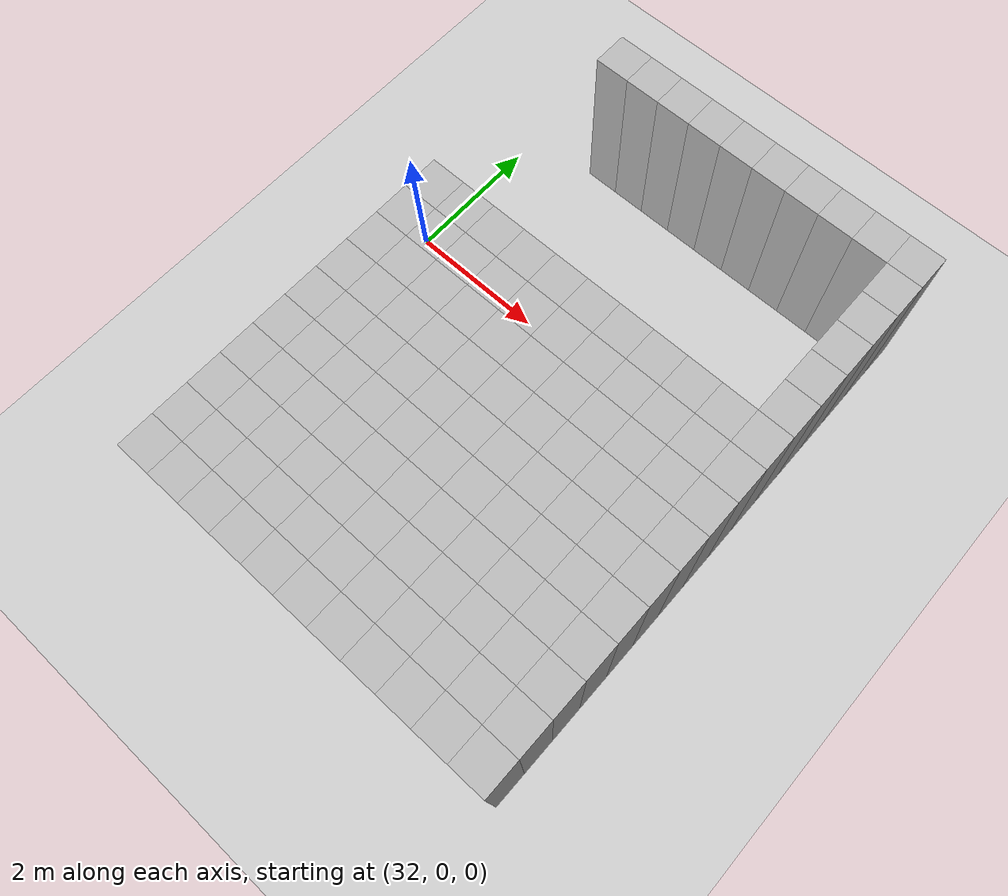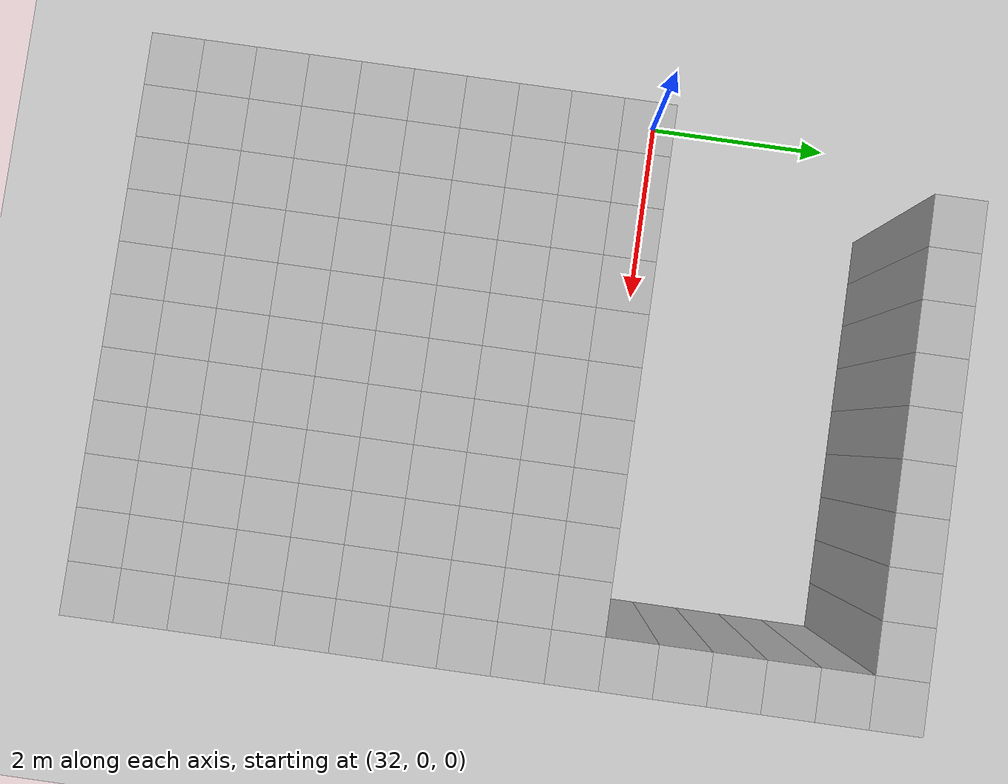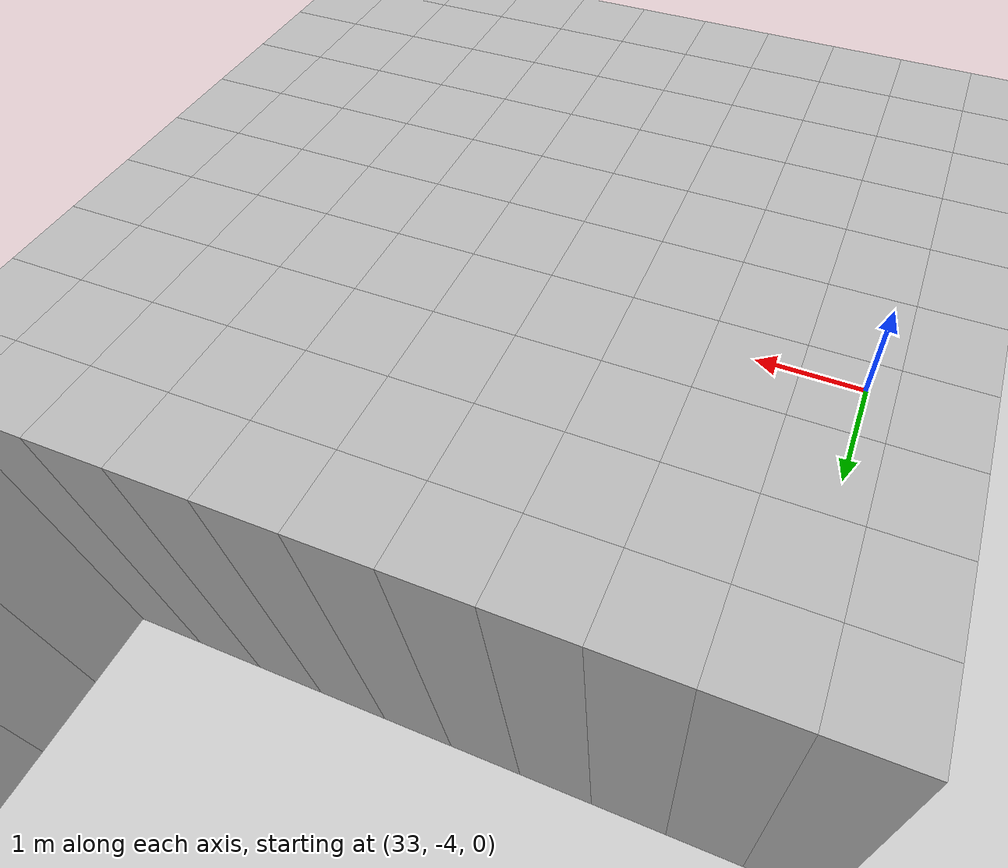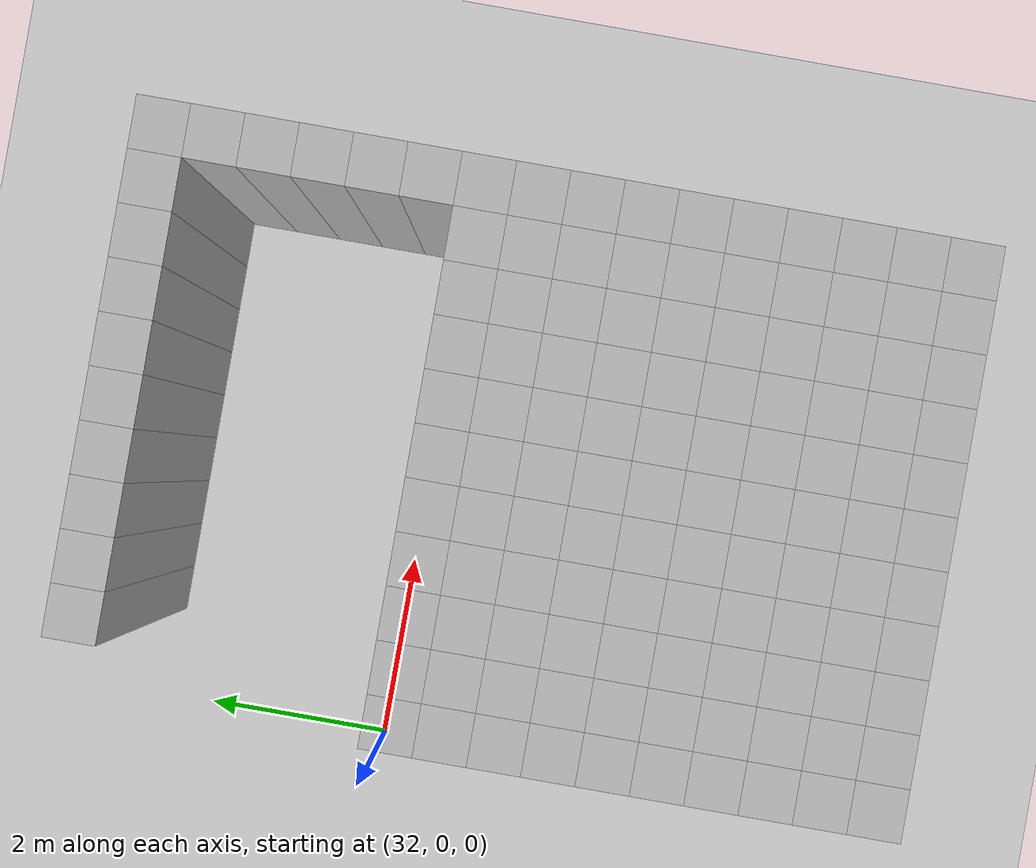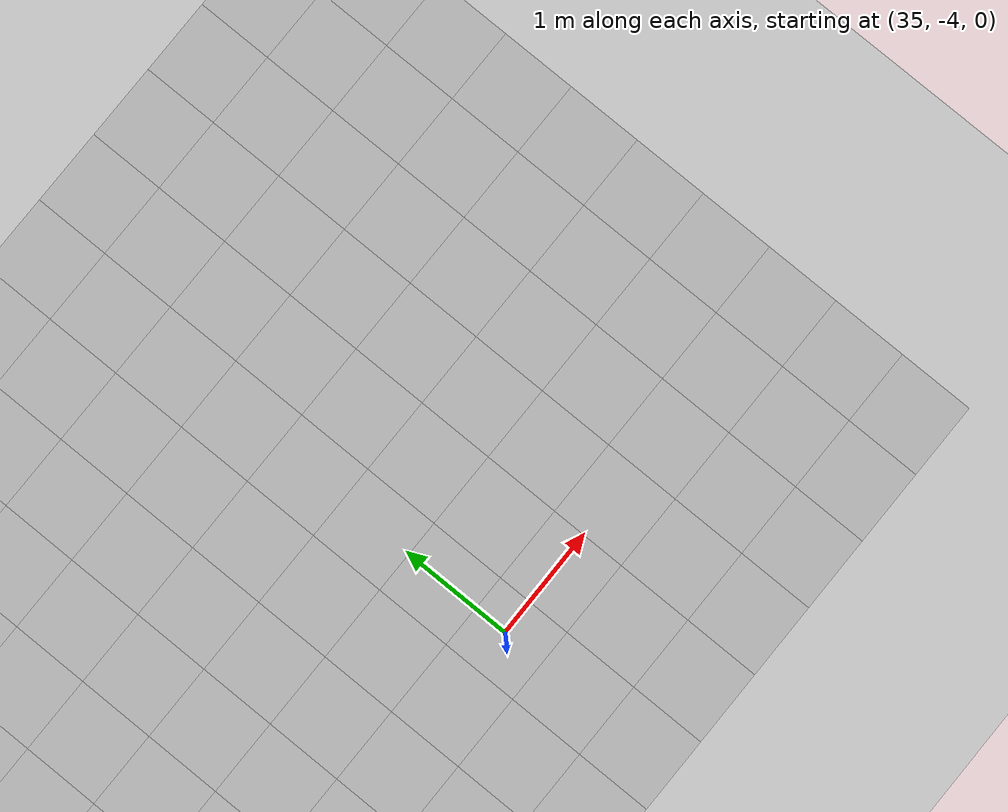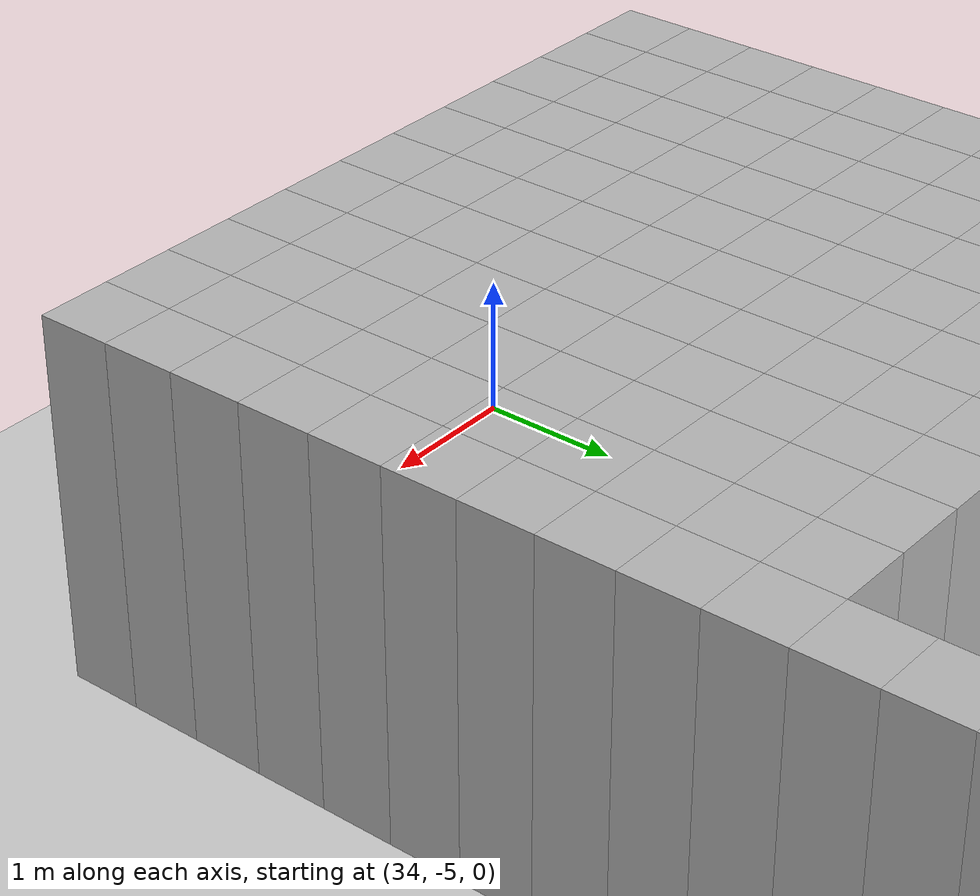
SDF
<sdf version="1.6">
 <world name="map_world">
  <include><uri>model://ground_plane</uri></include>
  <include><uri>model://sun</uri></include>
  <model name="wall_76">
   <static>true</static>
   <pose>33.250 2.750 1.250 0 0 0</pose>
   <link name="link">
    <collision name="collision"><geometry><box><size>0.500 0.500 2.500</size></box></geometry></collision>
    <visual name="visual"><geometry><box><size>0.500 0.500 2.500</size></box></geometry></visual>
   </link>
  </model>
  <model name="wall_77">
   <static>true</static>
   <pose>33.750 2.750 1.250 0 0 0</pose>
   <link name="link">
    <collision name="collision"><geometry><box><size>0.500 0.500 2.500</size></box></geometry></collision>
    <visual name="visual"><geometry><box><size>0.500 0.500 2.500</size></box></geometry></visual>
   </link>
  </model>
  <model name="wall_78">
   <static>true</static>
   <pose>34.250 2.750 1.250 0 0 0</pose>
   <link name="link">
    <collision name="collision"><geometry><box><size>0.500 0.500 2.500</size></box></geometry></collision>
    <visual name="visual"><geometry><box><size>0.500 0.500 2.500</size></box></geometry></visual>
   </link>
  </model>
  <model name="wall_79">
   <static>true</static>
   <pose>34.750 2.750 1.250 0 0 0</pose>
   <link name="link">
    <collision name="collision"><geometry><box><size>0.500 0.500 2.500</size></box></geometry></collision>
    <visual name="visual"><geometry><box><size>0.500 0.500 2.500</size></box></geometry></visual>
   </link>
  </model>
  <model name="wall_80">
   <static>true</static>
   <pose>35.250 2.750 1.250 0 0 0</pose>
   <link name="link">
    <collision name="collision"><geometry><box><size>0.500 0.500 2.500</size></box></geometry></collision>
    <visual name="visual"><geometry><box><size>0.500 0.500 2.500</size></box></geometry></visual>
   </link>
  </model>
  <model name="wall_81">
   <static>true</static>
   <pose>35.750 2.750 1.250 0 0 0</pose>
   <link name="link">
    <collision name="collision"><geometry><box><size>0.500 0.500 2.500</size></box></geometry></collision>
    <visual name="visual"><geometry><box><size>0.500 0.500 2.500</size></box></geometry></visual>
   </link>
  </model>
  <model name="wall_82">
   <static>true</static>
   <pose>36.250 2.750 1.250 0 0 0</pose>
   <link name="link">
    <collision name="collision"><geometry><box><size>0.500 0.500 2.500</size></box></geometry></collision>
    <visual name="visual"><geometry><box><size>0.500 0.500 2.500</size></box></geometry></visual>
   </link>
  </model>
  <model name="wall_83">
   <static>true</static>
   <pose>36.750 2.750 1.250 0 0 0</pose>
   <link name="link">
    <collision name="collision"><geometry><box><size>0.500 0.500 2.500</size></box></geometry></collision>
    <visual name="visual"><geometry><box><size>0.500 0.500 2.500</size></box></geometry></visual>
   </link>
  </model>
  <model name="wall_84">
   <static>true</static>
   <pose>37.250 2.750 1.250 0 0 0</pose>
   <link name="link">
    <collision name="collision"><geometry><box><size>0.500 0.500 2.500</size></box></geometry></collision>
    <visual name="visual"><geometry><box><size>0.500 0.500 2.500</size></box></geometry></visual>
   </link>
  </model>
  <model name="wall_85">
   <static>true</static>
   <pose>37.750 2.750 1.250 0 0 0</pose>
   <link name="link">
    <collision name="collision"><geometry><box><size>0.500 0.500 2.500</size></box></geometry></collision>
    <visual name="visual"><geometry><box><size>0.500 0.500 2.500</size></box></geometry></visual>
   </link>
  </model>
  <model name="wall_117">
   <static>true</static>
   <pose>37.750 2.250 1.250 0 0 0</pose>
   <link name="link">
    <collision name="collision"><geometry><box><size>0.500 0.500 2.500</size></box></geometry></collision>
    <visual name="visual"><geometry><box><size>0.500 0.500 2.500</size></box></geometry></visual>
   </link>
  </model>
  <model name="wall_119">
   <static>true</static>
   <pose>37.750 1.750 1.250 0 0 0</pose>
   <link name="link">
    <collision name="collision"><geometry><box><size>0.500 0.500 2.500</size></box></geometry></collision>
    <visual name="visual"><geometry><box><size>0.500 0.500 2.500</size></box></geometry></visual>
   </link>
  </model>
  <model name="wall_121">
   <static>true</static>
   <pose>37.750 1.250 1.250 0 0 0</pose>
   <link name="link">
    <collision name="collision"><geometry><box><size>0.500 0.500 2.500</size></box></geometry></collision>
    <visual name="visual"><geometry><box><size>0.500 0.500 2.500</size></box></geometry></visual>
   </link>
  </model>
  <model name="wall_123">
   <static>true</static>
   <pose>37.750 0.750 1.250 0 0 0</pose>
   <link name="link">
    <collision name="collision"><geometry><box><size>0.500 0.500 2.500</size></box></geometry></collision>
    <visual name="visual"><geometry><box><size>0.500 0.500 2.500</size></box></geometry></visual>
   </link>
  </model>
  <model name="wall_143">
   <static>true</static>
   <pose>37.750 0.250 1.250 0 0 0</pose>
   <link name="link">
    <collision name="collision"><geometry><box><size>0.500 0.500 2.500</size></box></geometry></collision>
    <visual name="visual"><geometry><box><size>0.500 0.500 2.500</size></box></geometry></visual>
   </link>
  </model>
  <model name="wall_205">
   <static>true</static>
   <pose>32.750 -0.250 1.250 0 0 0</pose>
   <link name="link">
    <collision name="collision"><geometry><box><size>0.500 0.500 2.500</size></box></geometry></collision>
    <visual name="visual"><geometry><box><size>0.500 0.500 2.500</size></box></geometry></visual>
   </link>
  </model>
  <model name="wall_206">
   <static>true</static>
   <pose>33.250 -0.250 1.250 0 0 0</pose>
   <link name="link">
    <collision name="collision"><geometry><box><size>0.500 0.500 2.500</size></box></geometry></collision>
    <visual name="visual"><geometry><box><size>0.500 0.500 2.500</size></box></geometry></visual>
   </link>
  </model>
  <model name="wall_207">
   <static>true</static>
   <pose>33.750 -0.250 1.250 0 0 0</pose>
   <link name="link">
    <collision name="collision"><geometry><box><size>0.500 0.500 2.500</size></box></geometry></collision>
    <visual name="visual"><geometry><box><size>0.500 0.500 2.500</size></box></geometry></visual>
   </link>
  </model>
  <model name="wall_208">
   <static>true</static>
   <pose>34.250 -0.250 1.250 0 0 0</pose>
   <link name="link">
    <collision name="collision"><geometry><box><size>0.500 0.500 2.500</size></box></geometry></collision>
    <visual name="visual"><geometry><box><size>0.500 0.500 2.500</size></box></geometry></visual>
   </link>
  </model>
  <model name="wall_209">
   <static>true</static>
   <pose>34.750 -0.250 1.250 0 0 0</pose>
   <link name="link">
    <collision name="collision"><geometry><box><size>0.500 0.500 2.500</size></box></geometry></collision>
    <visual name="visual"><geometry><box><size>0.500 0.500 2.500</size></box></geometry></visual>
   </link>
  </model>
  <model name="wall_210">
   <static>true</static>
   <pose>35.250 -0.250 1.250 0 0 0</pose>
   <link name="link">
    <collision name="collision"><geometry><box><size>0.500 0.500 2.500</size></box></geometry></collision>
    <visual name="visual"><geometry><box><size>0.500 0.500 2.500</size></box></geometry></visual>
   </link>
  </model>
  <model name="wall_211">
   <static>true</static>
   <pose>35.750 -0.250 1.250 0 0 0</pose>
   <link name="link">
    <collision name="collision"><geometry><box><size>0.500 0.500 2.500</size></box></geometry></collision>
    <visual name="visual"><geometry><box><size>0.500 0.500 2.500</size></box></geometry></visual>
   </link>
  </model>
  <model name="wall_212">
   <static>true</static>
   <pose>36.250 -0.250 1.250 0 0 0</pose>
   <link name="link">
    <collision name="collision"><geometry><box><size>0.500 0.500 2.500</size></box></geometry></collision>
    <visual name="visual"><geometry><box><size>0.500 0.500 2.500</size></box></geometry></visual>
   </link>
  </model>
  <model name="wall_213">
   <static>true</static>
   <pose>36.750 -0.250 1.250 0 0 0</pose>
   <link name="link">
    <collision name="collision"><geometry><box><size>0.500 0.500 2.500</size></box></geometry></collision>
    <visual name="visual"><geometry><box><size>0.500 0.500 2.500</size></box></geometry></visual>
   </link>
  </model>
  <model name="wall_214">
   <static>true</static>
   <pose>37.250 -0.250 1.250 0 0 0</pose>
   <link name="link">
    <collision name="collision"><geometry><box><size>0.500 0.500 2.500</size></box></geometry></collision>
    <visual name="visual"><geometry><box><size>0.500 0.500 2.500</size></box></geometry></visual>
   </link>
  </model>
  <model name="wall_215">
   <static>true</static>
   <pose>37.750 -0.250 1.250 0 0 0</pose>
   <link name="link">
    <collision name="collision"><geometry><box><size>0.500 0.500 2.500</size></box></geometry></collision>
    <visual name="visual"><geometry><box><size>0.500 0.500 2.500</size></box></geometry></visual>
   </link>
  </model>
  <model name="wall_277">
   <static>true</static>
   <pose>32.750 -0.750 1.250 0 0 0</pose>
   <link name="link">
    <collision name="collision"><geometry><box><size>0.500 0.500 2.500</size></box></geometry></collision>
    <visual name="visual"><geometry><box><size>0.500 0.500 2.500</size></box></geometry></visual>
   </link>
  </model>
  <model name="wall_278">
   <static>true</static>
   <pose>33.250 -0.750 1.250 0 0 0</pose>
   <link name="link">
    <collision name="collision"><geometry><box><size>0.500 0.500 2.500</size></box></geometry></collision>
    <visual name="visual"><geometry><box><size>0.500 0.500 2.500</size></box></geometry></visual>
   </link>
  </model>
  <model name="wall_279">
   <static>true</static>
   <pose>33.750 -0.750 1.250 0 0 0</pose>
   <link name="link">
    <collision name="collision"><geometry><box><size>0.500 0.500 2.500</size></box></geometry></collision>
    <visual name="visual"><geometry><box><size>0.500 0.500 2.500</size></box></geometry></visual>
   </link>
  </model>
  <model name="wall_280">
   <static>true</static>
   <pose>34.250 -0.750 1.250 0 0 0</pose>
   <link name="link">
    <collision name="collision"><geometry><box><size>0.500 0.500 2.500</size></box></geometry></collision>
    <visual name="visual"><geometry><box><size>0.500 0.500 2.500</size></box></geometry></visual>
   </link>
  </model>
  <model name="wall_281">
   <static>true</static>
   <pose>34.750 -0.750 1.250 0 0 0</pose>
   <link name="link">
    <collision name="collision"><geometry><box><size>0.500 0.500 2.500</size></box></geometry></collision>
    <visual name="visual"><geometry><box><size>0.500 0.500 2.500</size></box></geometry></visual>
   </link>
  </model>
  <model name="wall_282">
   <static>true</static>
   <pose>35.250 -0.750 1.250 0 0 0</pose>
   <link name="link">
    <collision name="collision"><geometry><box><size>0.500 0.500 2.500</size></box></geometry></collision>
    <visual name="visual"><geometry><box><size>0.500 0.500 2.500</size></box></geometry></visual>
   </link>
  </model>
  <model name="wall_283">
   <static>true</static>
   <pose>35.750 -0.750 1.250 0 0 0</pose>
   <link name="link">
    <collision name="collision"><geometry><box><size>0.500 0.500 2.500</size></box></geometry></collision>
    <visual name="visual"><geometry><box><size>0.500 0.500 2.500</size></box></geometry></visual>
   </link>
  </model>
  <model name="wall_284">
   <static>true</static>
   <pose>36.250 -0.750 1.250 0 0 0</pose>
   <link name="link">
    <collision name="collision"><geometry><box><size>0.500 0.500 2.500</size></box></geometry></collision>
    <visual name="visual"><geometry><box><size>0.500 0.500 2.500</size></box></geometry></visual>
   </link>
  </model>
  <model name="wall_285">
   <static>true</static>
   <pose>36.750 -0.750 1.250 0 0 0</pose>
   <link name="link">
    <collision name="collision"><geometry><box><size>0.500 0.500 2.500</size></box></geometry></collision>
    <visual name="visual"><geometry><box><size>0.500 0.500 2.500</size></box></geometry></visual>
   </link>
  </model>
  <model name="wall_286">
   <static>true</static>
   <pose>37.250 -0.750 1.250 0 0 0</pose>
   <link name="link">
    <collision name="collision"><geometry><box><size>0.500 0.500 2.500</size></box></geometry></collision>
    <visual name="visual"><geometry><box><size>0.500 0.500 2.500</size></box></geometry></visual>
   </link>
  </model>
  <model name="wall_287">
   <static>true</static>
   <pose>37.750 -0.750 1.250 0 0 0</pose>
   <link name="link">
    <collision name="collision"><geometry><box><size>0.500 0.500 2.500</size></box></geometry></collision>
    <visual name="visual"><geometry><box><size>0.500 0.500 2.500</size></box></geometry></visual>
   </link>
  </model>
  <model name="wall_349">
   <static>true</static>
   <pose>32.750 -1.250 1.250 0 0 0</pose>
   <link name="link">
    <collision name="collision"><geometry><box><size>0.500 0.500 2.500</size></box></geometry></collision>
    <visual name="visual"><geometry><box><size>0.500 0.500 2.500</size></box></geometry></visual>
   </link>
  </model>
  <model name="wall_350">
   <static>true</static>
   <pose>33.250 -1.250 1.250 0 0 0</pose>
   <link name="link">
    <collision name="collision"><geometry><box><size>0.500 0.500 2.500</size></box></geometry></collision>
    <visual name="visual"><geometry><box><size>0.500 0.500 2.500</size></box></geometry></visual>
   </link>
  </model>
  <model name="wall_351">
   <static>true</static>
   <pose>33.750 -1.250 1.250 0 0 0</pose>
   <link name="link">
    <collision name="collision"><geometry><box><size>0.500 0.500 2.500</size></box></geometry></collision>
    <visual name="visual"><geometry><box><size>0.500 0.500 2.500</size></box></geometry></visual>
   </link>
  </model>
  <model name="wall_352">
   <static>true</static>
   <pose>34.250 -1.250 1.250 0 0 0</pose>
   <link name="link">
    <collision name="collision"><geometry><box><size>0.500 0.500 2.500</size></box></geometry></collision>
    <visual name="visual"><geometry><box><size>0.500 0.500 2.500</size></box></geometry></visual>
   </link>
  </model>
  <model name="wall_353">
   <static>true</static>
   <pose>34.750 -1.250 1.250 0 0 0</pose>
   <link name="link">
    <collision name="collision"><geometry><box><size>0.500 0.500 2.500</size></box></geometry></collision>
    <visual name="visual"><geometry><box><size>0.500 0.500 2.500</size></box></geometry></visual>
   </link>
  </model>
  <model name="wall_354">
   <static>true</static>
   <pose>35.250 -1.250 1.250 0 0 0</pose>
   <link name="link">
    <collision name="collision"><geometry><box><size>0.500 0.500 2.500</size></box></geometry></collision>
    <visual name="visual"><geometry><box><size>0.500 0.500 2.500</size></box></geometry></visual>
   </link>
  </model>
  <model name="wall_355">
   <static>true</static>
   <pose>35.750 -1.250 1.250 0 0 0</pose>
   <link name="link">
    <collision name="collision"><geometry><box><size>0.500 0.500 2.500</size></box></geometry></collision>
    <visual name="visual"><geometry><box><size>0.500 0.500 2.500</size></box></geometry></visual>
   </link>
  </model>
  <model name="wall_356">
   <static>true</static>
   <pose>36.250 -1.250 1.250 0 0 0</pose>
   <link name="link">
    <collision name="collision"><geometry><box><size>0.500 0.500 2.500</size></box></geometry></collision>
    <visual name="visual"><geometry><box><size>0.500 0.500 2.500</size></box></geometry></visual>
   </link>
  </model>
  <model name="wall_357">
   <static>true</static>
   <pose>36.750 -1.250 1.250 0 0 0</pose>
   <link name="link">
    <collision name="collision"><geometry><box><size>0.500 0.500 2.500</size></box></geometry></collision>
    <visual name="visual"><geometry><box><size>0.500 0.500 2.500</size></box></geometry></visual>
   </link>
  </model>
  <model name="wall_358">
   <static>true</static>
   <pose>37.250 -1.250 1.250 0 0 0</pose>
   <link name="link">
    <collision name="collision"><geometry><box><size>0.500 0.500 2.500</size></box></geometry></collision>
    <visual name="visual"><geometry><box><size>0.500 0.500 2.500</size></box></geometry></visual>
   </link>
  </model>
  <model name="wall_359">
   <static>true</static>
   <pose>37.750 -1.250 1.250 0 0 0</pose>
   <link name="link">
    <collision name="collision"><geometry><box><size>0.500 0.500 2.500</size></box></geometry></collision>
    <visual name="visual"><geometry><box><size>0.500 0.500 2.500</size></box></geometry></visual>
   </link>
  </model>
  <model name="wall_421">
   <static>true</static>
   <pose>32.750 -1.750 1.250 0 0 0</pose>
   <link name="link">
    <collision name="collision"><geometry><box><size>0.500 0.500 2.500</size></box></geometry></collision>
    <visual name="visual"><geometry><box><size>0.500 0.500 2.500</size></box></geometry></visual>
   </link>
  </model>
  <model name="wall_422">
   <static>true</static>
   <pose>33.250 -1.750 1.250 0 0 0</pose>
   <link name="link">
    <collision name="collision"><geometry><box><size>0.500 0.500 2.500</size></box></geometry></collision>
    <visual name="visual"><geometry><box><size>0.500 0.500 2.500</size></box></geometry></visual>
   </link>
  </model>
  <model name="wall_423">
   <static>true</static>
   <pose>33.750 -1.750 1.250 0 0 0</pose>
   <link name="link">
    <collision name="collision"><geometry><box><size>0.500 0.500 2.500</size></box></geometry></collision>
    <visual name="visual"><geometry><box><size>0.500 0.500 2.500</size></box></geometry></visual>
   </link>
  </model>
  <model name="wall_424">
   <static>true</static>
   <pose>34.250 -1.750 1.250 0 0 0</pose>
   <link name="link">
    <collision name="collision"><geometry><box><size>0.500 0.500 2.500</size></box></geometry></collision>
    <visual name="visual"><geometry><box><size>0.500 0.500 2.500</size></box></geometry></visual>
   </link>
  </model>
  <model name="wall_425">
   <static>true</static>
   <pose>34.750 -1.750 1.250 0 0 0</pose>
   <link name="link">
    <collision name="collision"><geometry><box><size>0.500 0.500 2.500</size></box></geometry></collision>
    <visual name="visual"><geometry><box><size>0.500 0.500 2.500</size></box></geometry></visual>
   </link>
  </model>
  <model name="wall_426">
   <static>true</static>
   <pose>35.250 -1.750 1.250 0 0 0</pose>
   <link name="link">
    <collision name="collision"><geometry><box><size>0.500 0.500 2.500</size></box></geometry></collision>
    <visual name="visual"><geometry><box><size>0.500 0.500 2.500</size></box></geometry></visual>
   </link>
  </model>
  <model name="wall_427">
   <static>true</static>
   <pose>35.750 -1.750 1.250 0 0 0</pose>
   <link name="link">
    <collision name="collision"><geometry><box><size>0.500 0.500 2.500</size></box></geometry></collision>
    <visual name="visual"><geometry><box><size>0.500 0.500 2.500</size></box></geometry></visual>
   </link>
  </model>
  <model name="wall_428">
   <static>true</static>
   <pose>36.250 -1.750 1.250 0 0 0</pose>
   <link name="link">
    <collision name="collision"><geometry><box><size>0.500 0.500 2.500</size></box></geometry></collision>
    <visual name="visual"><geometry><box><size>0.500 0.500 2.500</size></box></geometry></visual>
   </link>
  </model>
  <model name="wall_429">
   <static>true</static>
   <pose>36.750 -1.750 1.250 0 0 0</pose>
   <link name="link">
    <collision name="collision"><geometry><box><size>0.500 0.500 2.500</size></box></geometry></collision>
    <visual name="visual"><geometry><box><size>0.500 0.500 2.500</size></box></geometry></visual>
   </link>
  </model>
  <model name="wall_430">
   <static>true</static>
   <pose>37.250 -1.750 1.250 0 0 0</pose>
   <link name="link">
    <collision name="collision"><geometry><box><size>0.500 0.500 2.500</size></box></geometry></collision>
    <visual name="visual"><geometry><box><size>0.500 0.500 2.500</size></box></geometry></visual>
   </link>
  </model>
  <model name="wall_431">
   <static>true</static>
   <pose>37.750 -1.750 1.250 0 0 0</pose>
   <link name="link">
    <collision name="collision"><geometry><box><size>0.500 0.500 2.500</size></box></geometry></collision>
    <visual name="visual"><geometry><box><size>0.500 0.500 2.500</size></box></geometry></visual>
   </link>
  </model>
  <model name="wall_493">
   <static>true</static>
   <pose>32.750 -2.250 1.250 0 0 0</pose>
   <link name="link">
    <collision name="collision"><geometry><box><size>0.500 0.500 2.500</size></box></geometry></collision>
    <visual name="visual"><geometry><box><size>0.500 0.500 2.500</size></box></geometry></visual>
   </link>
  </model>
  <model name="wall_494">
   <static>true</static>
   <pose>33.250 -2.250 1.250 0 0 0</pose>
   <link name="link">
    <collision name="collision"><geometry><box><size>0.500 0.500 2.500</size></box></geometry></collision>
    <visual name="visual"><geometry><box><size>0.500 0.500 2.500</size></box></geometry></visual>
   </link>
  </model>
  <model name="wall_495">
   <static>true</static>
   <pose>33.750 -2.250 1.250 0 0 0</pose>
   <link name="link">
    <collision name="collision"><geometry><box><size>0.500 0.500 2.500</size></box></geometry></collision>
    <visual name="visual"><geometry><box><size>0.500 0.500 2.500</size></box></geometry></visual>
   </link>
  </model>
  <model name="wall_496">
   <static>true</static>
   <pose>34.250 -2.250 1.250 0 0 0</pose>
   <link name="link">
    <collision name="collision"><geometry><box><size>0.500 0.500 2.500</size></box></geometry></collision>
    <visual name="visual"><geometry><box><size>0.500 0.500 2.500</size></box></geometry></visual>
   </link>
  </model>
  <model name="wall_497">
   <static>true</static>
   <pose>34.750 -2.250 1.250 0 0 0</pose>
   <link name="link">
    <collision name="collision"><geometry><box><size>0.500 0.500 2.500</size></box></geometry></collision>
    <visual name="visual"><geometry><box><size>0.500 0.500 2.500</size></box></geometry></visual>
   </link>
  </model>
  <model name="wall_498">
   <static>true</static>
   <pose>35.250 -2.250 1.250 0 0 0</pose>
   <link name="link">
    <collision name="collision"><geometry><box><size>0.500 0.500 2.500</size></box></geometry></collision>
    <visual name="visual"><geometry><box><size>0.500 0.500 2.500</size></box></geometry></visual>
   </link>
  </model>
  <model name="wall_499">
   <static>true</static>
   <pose>35.750 -2.250 1.250 0 0 0</pose>
   <link name="link">
    <collision name="collision"><geometry><box><size>0.500 0.500 2.500</size></box></geometry></collision>
    <visual name="visual"><geometry><box><size>0.500 0.500 2.500</size></box></geometry></visual>
   </link>
  </model>
  <model name="wall_500">
   <static>true</static>
   <pose>36.250 -2.250 1.250 0 0 0</pose>
   <link name="link">
    <collision name="collision"><geometry><box><size>0.500 0.500 2.500</size></box></geometry></collision>
    <visual name="visual"><geometry><box><size>0.500 0.500 2.500</size></box></geometry></visual>
   </link>
  </model>
  <model name="wall_501">
   <static>true</static>
   <pose>36.750 -2.250 1.250 0 0 0</pose>
   <link name="link">
    <collision name="collision"><geometry><box><size>0.500 0.500 2.500</size></box></geometry></collision>
    <visual name="visual"><geometry><box><size>0.500 0.500 2.500</size></box></geometry></visual>
   </link>
  </model>
  <model name="wall_502">
   <static>true</static>
   <pose>37.250 -2.250 1.250 0 0 0</pose>
   <link name="link">
    <collision name="collision"><geometry><box><size>0.500 0.500 2.500</size></box></geometry></collision>
    <visual name="visual"><geometry><box><size>0.500 0.500 2.500</size></box></geometry></visual>
   </link>
  </model>
  <model name="wall_503">
   <static>true</static>
   <pose>37.750 -2.250 1.250 0 0 0</pose>
   <link name="link">
    <collision name="collision"><geometry><box><size>0.500 0.500 2.500</size></box></geometry></collision>
    <visual name="visual"><geometry><box><size>0.500 0.500 2.500</size></box></geometry></visual>
   </link>
  </model>
  <model name="wall_565">
   <static>true</static>
   <pose>32.750 -2.750 1.250 0 0 0</pose>
   <link name="link">
    <collision name="collision"><geometry><box><size>0.500 0.500 2.500</size></box></geometry></collision>
    <visual name="visual"><geometry><box><size>0.500 0.500 2.500</size></box></geometry></visual>
   </link>
  </model>
  <model name="wall_566">
   <static>true</static>
   <pose>33.250 -2.750 1.250 0 0 0</pose>
   <link name="link">
    <collision name="collision"><geometry><box><size>0.500 0.500 2.500</size></box></geometry></collision>
    <visual name="visual"><geometry><box><size>0.500 0.500 2.500</size></box></geometry></visual>
   </link>
  </model>
  <model name="wall_567">
   <static>true</static>
   <pose>33.750 -2.750 1.250 0 0 0</pose>
   <link name="link">
    <collision name="collision"><geometry><box><size>0.500 0.500 2.500</size></box></geometry></collision>
    <visual name="visual"><geometry><box><size>0.500 0.500 2.500</size></box></geometry></visual>
   </link>
  </model>
  <model name="wall_568">
   <static>true</static>
   <pose>34.250 -2.750 1.250 0 0 0</pose>
   <link name="link">
    <collision name="collision"><geometry><box><size>0.500 0.500 2.500</size></box></geometry></collision>
    <visual name="visual"><geometry><box><size>0.500 0.500 2.500</size></box></geometry></visual>
   </link>
  </model>
  <model name="wall_569">
   <static>true</static>
   <pose>34.750 -2.750 1.250 0 0 0</pose>
   <link name="link">
    <collision name="collision"><geometry><box><size>0.500 0.500 2.500</size></box></geometry></collision>
    <visual name="visual"><geometry><box><size>0.500 0.500 2.500</size></box></geometry></visual>
   </link>
  </model>
  <model name="wall_570">
   <static>true</static>
   <pose>35.250 -2.750 1.250 0 0 0</pose>
   <link name="link">
    <collision name="collision"><geometry><box><size>0.500 0.500 2.500</size></box></geometry></collision>
    <visual name="visual"><geometry><box><size>0.500 0.500 2.500</size></box></geometry></visual>
   </link>
  </model>
  <model name="wall_571">
   <static>true</static>
   <pose>35.750 -2.750 1.250 0 0 0</pose>
   <link name="link">
    <collision name="collision"><geometry><box><size>0.500 0.500 2.500</size></box></geometry></collision>
    <visual name="visual"><geometry><box><size>0.500 0.500 2.500</size></box></geometry></visual>
   </link>
  </model>
  <model name="wall_572">
   <static>true</static>
   <pose>36.250 -2.750 1.250 0 0 0</pose>
   <link name="link">
    <collision name="collision"><geometry><box><size>0.500 0.500 2.500</size></box></geometry></collision>
    <visual name="visual"><geometry><box><size>0.500 0.500 2.500</size></box></geometry></visual>
   </link>
  </model>
  <model name="wall_573">
   <static>true</static>
   <pose>36.750 -2.750 1.250 0 0 0</pose>
   <link name="link">
    <collision name="collision"><geometry><box><size>0.500 0.500 2.500</size></box></geometry></collision>
    <visual name="visual"><geometry><box><size>0.500 0.500 2.500</size></box></geometry></visual>
   </link>
  </model>
  <model name="wall_574">
   <static>true</static>
   <pose>37.250 -2.750 1.250 0 0 0</pose>
   <link name="link">
    <collision name="collision"><geometry><box><size>0.500 0.500 2.500</size></box></geometry></collision>
    <visual name="visual"><geometry><box><size>0.500 0.500 2.500</size></box></geometry></visual>
   </link>
  </model>
  <model name="wall_575">
   <static>true</static>
   <pose>37.750 -2.750 1.250 0 0 0</pose>
   <link name="link">
    <collision name="collision"><geometry><box><size>0.500 0.500 2.500</size></box></geometry></collision>
    <visual name="visual"><geometry><box><size>0.500 0.500 2.500</size></box></geometry></visual>
   </link>
  </model>
  <model name="wall_637">
   <static>true</static>
   <pose>32.750 -3.250 1.250 0 0 0</pose>
   <link name="link">
    <collision name="collision"><geometry><box><size>0.500 0.500 2.500</size></box></geometry></collision>
    <visual name="visual"><geometry><box><size>0.500 0.500 2.500</size></box></geometry></visual>
   </link>
  </model>
  <model name="wall_638">
   <static>true</static>
   <pose>33.250 -3.250 1.250 0 0 0</pose>
   <link name="link">
    <collision name="collision"><geometry><box><size>0.500 0.500 2.500</size></box></geometry></collision>
    <visual name="visual"><geometry><box><size>0.500 0.500 2.500</size></box></geometry></visual>
   </link>
  </model>
  <model name="wall_639">
   <static>true</static>
   <pose>33.750 -3.250 1.250 0 0 0</pose>
   <link name="link">
    <collision name="collision"><geometry><box><size>0.500 0.500 2.500</size></box></geometry></collision>
    <visual name="visual"><geometry><box><size>0.500 0.500 2.500</size></box></geometry></visual>
   </link>
  </model>
  <model name="wall_640">
   <static>true</static>
   <pose>34.250 -3.250 1.250 0 0 0</pose>
   <link name="link">
    <collision name="collision"><geometry><box><size>0.500 0.500 2.500</size></box></geometry></collision>
    <visual name="visual"><geometry><box><size>0.500 0.500 2.500</size></box></geometry></visual>
   </link>
  </model>
  <model name="wall_641">
   <static>true</static>
   <pose>34.750 -3.250 1.250 0 0 0</pose>
   <link name="link">
    <collision name="collision"><geometry><box><size>0.500 0.500 2.500</size></box></geometry></collision>
    <visual name="visual"><geometry><box><size>0.500 0.500 2.500</size></box></geometry></visual>
   </link>
  </model>
  <model name="wall_642">
   <static>true</static>
   <pose>35.250 -3.250 1.250 0 0 0</pose>
   <link name="link">
    <collision name="collision"><geometry><box><size>0.500 0.500 2.500</size></box></geometry></collision>
    <visual name="visual"><geometry><box><size>0.500 0.500 2.500</size></box></geometry></visual>
   </link>
  </model>
  <model name="wall_643">
   <static>true</static>
   <pose>35.750 -3.250 1.250 0 0 0</pose>
   <link name="link">
    <collision name="collision"><geometry><box><size>0.500 0.500 2.500</size></box></geometry></collision>
    <visual name="visual"><geometry><box><size>0.500 0.500 2.500</size></box></geometry></visual>
   </link>
  </model>
  <model name="wall_644">
   <static>true</static>
   <pose>36.250 -3.250 1.250 0 0 0</pose>
   <link name="link">
    <collision name="collision"><geometry><box><size>0.500 0.500 2.500</size></box></geometry></collision>
    <visual name="visual"><geometry><box><size>0.500 0.500 2.500</size></box></geometry></visual>
   </link>
  </model>
  <model name="wall_645">
   <static>true</static>
   <pose>36.750 -3.250 1.250 0 0 0</pose>
   <link name="link">
    <collision name="collision"><geometry><box><size>0.500 0.500 2.500</size></box></geometry></collision>
    <visual name="visual"><geometry><box><size>0.500 0.500 2.500</size></box></geometry></visual>
   </link>
  </model>
  <model name="wall_646">
   <static>true</static>
   <pose>37.250 -3.250 1.250 0 0 0</pose>
   <link name="link">
    <collision name="collision"><geometry><box><size>0.500 0.500 2.500</size></box></geometry></collision>
    <visual name="visual"><geometry><box><size>0.500 0.500 2.500</size></box></geometry></visual>
   </link>
  </model>
  <model name="wall_647">
   <static>true</static>
   <pose>37.750 -3.250 1.250 0 0 0</pose>
   <link name="link">
    <collision name="collision"><geometry><box><size>0.500 0.500 2.500</size></box></geometry></collision>
    <visual name="visual"><geometry><box><size>0.500 0.500 2.500</size></box></geometry></visual>
   </link>
  </model>
  <model name="wall_709">
   <static>true</static>
   <pose>32.750 -3.750 1.250 0 0 0</pose>
   <link name="link">
    <collision name="collision"><geometry><box><size>0.500 0.500 2.500</size></box></geometry></collision>
    <visual name="visual"><geometry><box><size>0.500 0.500 2.500</size></box></geometry></visual>
   </link>
  </model>
  <model name="wall_710">
   <static>true</static>
   <pose>33.250 -3.750 1.250 0 0 0</pose>
   <link name="link">
    <collision name="collision"><geometry><box><size>0.500 0.500 2.500</size></box></geometry></collision>
    <visual name="visual"><geometry><box><size>0.500 0.500 2.500</size></box></geometry></visual>
   </link>
  </model>
  <model name="wall_711">
   <static>true</static>
   <pose>33.750 -3.750 1.250 0 0 0</pose>
   <link name="link">
    <collision name="collision"><geometry><box><size>0.500 0.500 2.500</size></box></geometry></collision>
    <visual name="visual"><geometry><box><size>0.500 0.500 2.500</size></box></geometry></visual>
   </link>
  </model>
  <model name="wall_712">
   <static>true</static>
   <pose>34.250 -3.750 1.250 0 0 0</pose>
   <link name="link">
    <collision name="collision"><geometry><box><size>0.500 0.500 2.500</size></box></geometry></collision>
    <visual name="visual"><geometry><box><size>0.500 0.500 2.500</size></box></geometry></visual>
   </link>
  </model>
  <model name="wall_713">
   <static>true</static>
   <pose>34.750 -3.750 1.250 0 0 0</pose>
   <link name="link">
    <collision name="collision"><geometry><box><size>0.500 0.500 2.500</size></box></geometry></collision>
    <visual name="visual"><geometry><box><size>0.500 0.500 2.500</size></box></geometry></visual>
   </link>
  </model>
  <model name="wall_714">
   <static>true</static>
   <pose>35.250 -3.750 1.250 0 0 0</pose>
   <link name="link">
    <collision name="collision"><geometry><box><size>0.500 0.500 2.500</size></box></geometry></collision>
    <visual name="visual"><geometry><box><size>0.500 0.500 2.500</size></box></geometry></visual>
   </link>
  </model>
  <model name="wall_715">
   <static>true</static>
   <pose>35.750 -3.750 1.250 0 0 0</pose>
   <link name="link">
    <collision name="collision"><geometry><box><size>0.500 0.500 2.500</size></box></geometry></collision>
    <visual name="visual"><geometry><box><size>0.500 0.500 2.500</size></box></geometry></visual>
   </link>
  </model>
  <model name="wall_716">
   <static>true</static>
   <pose>36.250 -3.750 1.250 0 0 0</pose>
   <link name="link">
    <collision name="collision"><geometry><box><size>0.500 0.500 2.500</size></box></geometry></collision>
    <visual name="visual"><geometry><box><size>0.500 0.500 2.500</size></box></geometry></visual>
   </link>
  </model>
  <model name="wall_717">
   <static>true</static>
   <pose>36.750 -3.750 1.250 0 0 0</pose>
   <link name="link">
    <collision name="collision"><geometry><box><size>0.500 0.500 2.500</size></box></geometry></collision>
    <visual name="visual"><geometry><box><size>0.500 0.500 2.500</size></box></geometry></visual>
   </link>
  </model>
  <model name="wall_718">
   <static>true</static>
   <pose>37.250 -3.750 1.250 0 0 0</pose>
   <link name="link">
    <collision name="collision"><geometry><box><size>0.500 0.500 2.500</size></box></geometry></collision>
    <visual name="visual"><geometry><box><size>0.500 0.500 2.500</size></box></geometry></visual>
   </link>
  </model>
  <model name="wall_719">
   <static>true</static>
   <pose>37.750 -3.750 1.250 0 0 0</pose>
   <link name="link">
    <collision name="collision"><geometry><box><size>0.500 0.500 2.500</size></box></geometry></collision>
    <visual name="visual"><geometry><box><size>0.500 0.500 2.500</size></box></geometry></visual>
   </link>
  </model>
  <model name="wall_781">
   <static>true</static>
   <pose>32.750 -4.250 1.250 0 0 0</pose>
   <link name="link">
    <collision name="collision"><geometry><box><size>0.500 0.500 2.500</size></box></geometry></collision>
    <visual name="visual"><geometry><box><size>0.500 0.500 2.500</size></box></geometry></visual>
   </link>
  </model>
  <model name="wall_782">
   <static>true</static>
   <pose>33.250 -4.250 1.250 0 0 0</pose>
   <link name="link">
    <collision name="collision"><geometry><box><size>0.500 0.500 2.500</size></box></geometry></collision>
    <visual name="visual"><geometry><box><size>0.500 0.500 2.500</size></box></geometry></visual>
   </link>
  </model>
  <model name="wall_783">
   <static>true</static>
   <pose>33.750 -4.250 1.250 0 0 0</pose>
   <link name="link">
    <collision name="collision"><geometry><box><size>0.500 0.500 2.500</size></box></geometry></collision>
    <visual name="visual"><geometry><box><size>0.500 0.500 2.500</size></box></geometry></visual>
   </link>
  </model>
  <model name="wall_784">
   <static>true</static>
   <pose>34.250 -4.250 1.250 0 0 0</pose>
   <link name="link">
    <collision name="collision"><geometry><box><size>0.500 0.500 2.500</size></box></geometry></collision>
    <visual name="visual"><geometry><box><size>0.500 0.500 2.500</size></box></geometry></visual>
   </link>
  </model>
  <model name="wall_785">
   <static>true</static>
   <pose>34.750 -4.250 1.250 0 0 0</pose>
   <link name="link">
    <collision name="collision"><geometry><box><size>0.500 0.500 2.500</size></box></geometry></collision>
    <visual name="visual"><geometry><box><size>0.500 0.500 2.500</size></box></geometry></visual>
   </link>
  </model>
  <model name="wall_786">
   <static>true</static>
   <pose>35.250 -4.250 1.250 0 0 0</pose>
   <link name="link">
    <collision name="collision"><geometry><box><size>0.500 0.500 2.500</size></box></geometry></collision>
    <visual name="visual"><geometry><box><size>0.500 0.500 2.500</size></box></geometry></visual>
   </link>
  </model>
  <model name="wall_787">
   <static>true</static>
   <pose>35.750 -4.250 1.250 0 0 0</pose>
   <link name="link">
    <collision name="collision"><geometry><box><size>0.500 0.500 2.500</size></box></geometry></collision>
    <visual name="visual"><geometry><box><size>0.500 0.500 2.500</size></box></geometry></visual>
   </link>
  </model>
  <model name="wall_788">
   <static>true</static>
   <pose>36.250 -4.250 1.250 0 0 0</pose>
   <link name="link">
    <collision name="collision"><geometry><box><size>0.500 0.500 2.500</size></box></geometry></collision>
    <visual name="visual"><geometry><box><size>0.500 0.500 2.500</size></box></geometry></visual>
   </link>
  </model>
  <model name="wall_789">
   <static>true</static>
   <pose>36.750 -4.250 1.250 0 0 0</pose>
   <link name="link">
    <collision name="collision"><geometry><box><size>0.500 0.500 2.500</size></box></geometry></collision>
    <visual name="visual"><geometry><box><size>0.500 0.500 2.500</size></box></geometry></visual>
   </link>
  </model>
  <model name="wall_790">
   <static>true</static>
   <pose>37.250 -4.250 1.250 0 0 0</pose>
   <link name="link">
    <collision name="collision"><geometry><box><size>0.500 0.500 2.500</size></box></geometry></collision>
    <visual name="visual"><geometry><box><size>0.500 0.500 2.500</size></box></geometry></visual>
   </link>
  </model>
  <model name="wall_791">
   <static>true</static>
   <pose>37.750 -4.250 1.250 0 0 0</pose>
   <link name="link">
    <collision name="collision"><geometry><box><size>0.500 0.500 2.500</size></box></geometry></collision>
    <visual name="visual"><geometry><box><size>0.500 0.500 2.500</size></box></geometry></visual>
   </link>
  </model>
  <model name="wall_867">
   <static>true</static>
   <pose>32.750 -4.750 1.250 0 0 0</pose>
   <link name="link">
    <collision name="collision"><geometry><box><size>0.500 0.500 2.500</size></box></geometry></collision>
    <visual name="visual"><geometry><box><size>0.500 0.500 2.500</size></box></geometry></visual>
   </link>
  </model>
  <model name="wall_868">
   <static>true</static>
   <pose>33.250 -4.750 1.250 0 0 0</pose>
   <link name="link">
    <collision name="collision"><geometry><box><size>0.500 0.500 2.500</size></box></geometry></collision>
    <visual name="visual"><geometry><box><size>0.500 0.500 2.500</size></box></geometry></visual>
   </link>
  </model>
  <model name="wall_869">
   <static>true</static>
   <pose>33.750 -4.750 1.250 0 0 0</pose>
   <link name="link">
    <collision name="collision"><geometry><box><size>0.500 0.500 2.500</size></box></geometry></collision>
    <visual name="visual"><geometry><box><size>0.500 0.500 2.500</size></box></geometry></visual>
   </link>
  </model>
  <model name="wall_870">
   <static>true</static>
   <pose>34.250 -4.750 1.250 0 0 0</pose>
   <link name="link">
    <collision name="collision"><geometry><box><size>0.500 0.500 2.500</size></box></geometry></collision>
    <visual name="visual"><geometry><box><size>0.500 0.500 2.500</size></box></geometry></visual>
   </link>
  </model>
  <model name="wall_871">
   <static>true</static>
   <pose>34.750 -4.750 1.250 0 0 0</pose>
   <link name="link">
    <collision name="collision"><geometry><box><size>0.500 0.500 2.500</size></box></geometry></collision>
    <visual name="visual"><geometry><box><size>0.500 0.500 2.500</size></box></geometry></visual>
   </link>
  </model>
  <model name="wall_872">
   <static>true</static>
   <pose>35.250 -4.750 1.250 0 0 0</pose>
   <link name="link">
    <collision name="collision"><geometry><box><size>0.500 0.500 2.500</size></box></geometry></collision>
    <visual name="visual"><geometry><box><size>0.500 0.500 2.500</size></box></geometry></visual>
   </link>
  </model>
  <model name="wall_873">
   <static>true</static>
   <pose>35.750 -4.750 1.250 0 0 0</pose>
   <link name="link">
    <collision name="collision"><geometry><box><size>0.500 0.500 2.500</size></box></geometry></collision>
    <visual name="visual"><geometry><box><size>0.500 0.500 2.500</size></box></geometry></visual>
   </link>
  </model>
  <model name="wall_874">
   <static>true</static>
   <pose>36.250 -4.750 1.250 0 0 0</pose>
   <link name="link">
    <collision name="collision"><geometry><box><size>0.500 0.500 2.500</size></box></geometry></collision>
    <visual name="visual"><geometry><box><size>0.500 0.500 2.500</size></box></geometry></visual>
   </link>
  </model>
  <model name="wall_875">
   <static>true</static>
   <pose>36.750 -4.750 1.250 0 0 0</pose>
   <link name="link">
    <collision name="collision"><geometry><box><size>0.500 0.500 2.500</size></box></geometry></collision>
    <visual name="visual"><geometry><box><size>0.500 0.500 2.500</size></box></geometry></visual>
   </link>
  </model>
  <model name="wall_876">
   <static>true</static>
   <pose>37.250 -4.750 1.250 0 0 0</pose>
   <link name="link">
    <collision name="collision"><geometry><box><size>0.500 0.500 2.500</size></box></geometry></collision>
    <visual name="visual"><geometry><box><size>0.500 0.500 2.500</size></box></geometry></visual>
   </link>
  </model>
  <model name="wall_877">
   <static>true</static>
   <pose>37.750 -4.750 1.250 0 0 0</pose>
   <link name="link">
    <collision name="collision"><geometry><box><size>0.500 0.500 2.500</size></box></geometry></collision>
    <visual name="visual"><geometry><box><size>0.500 0.500 2.500</size></box></geometry></visual>
   </link>
  </model>
 </world>
</sdf>
